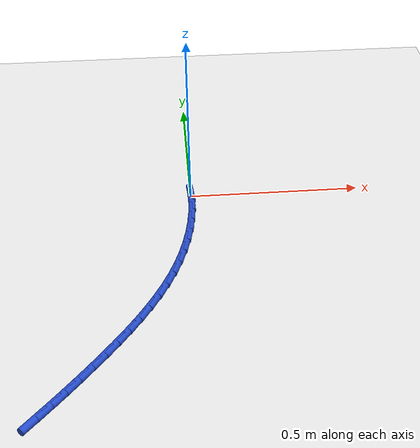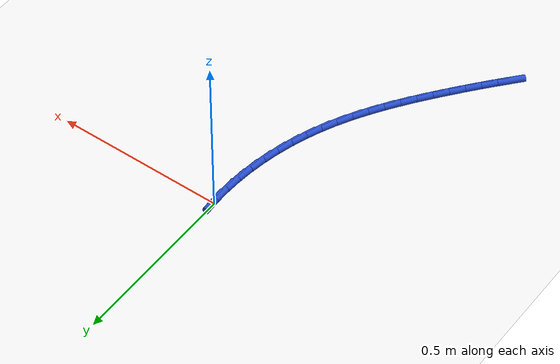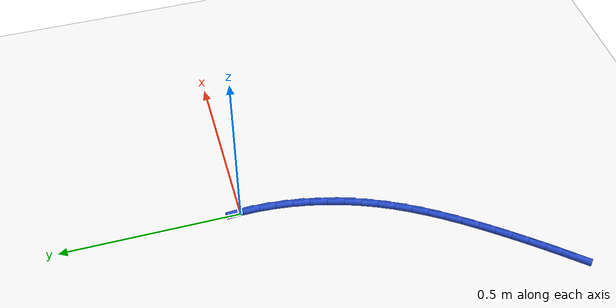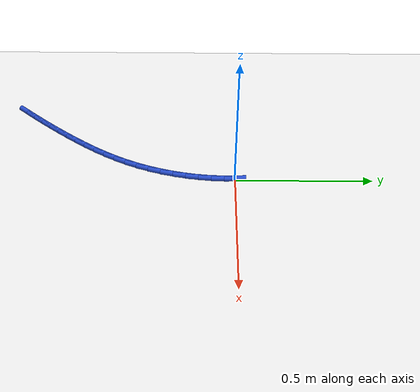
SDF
<sdf version="1.6">
 <world name="default">
  <model name="ground_plane">
   <static>1</static>
   <link name="link">
    <collision name="collision">
     <geometry><plane><normal>0 0 1</normal><size>100 100</size></plane></geometry>
     <surface><friction><ode><mu>100</mu><mu2>50</mu2></ode></friction></surface>
    </collision>
    <visual name="visual">
     <cast_shadows>0</cast_shadows>
     <geometry><plane><normal>0 0 1</normal><size>100 100</size></plane></geometry>
     <material>
      <script><uri>file://media/materials/scripts/gazebo.material</uri><name>Gazebo/WhiteGlow</name></script>
     </material>
    </visual>
   </link>
  </model>
  <model name="line">
   <link name="link_0">
    <pose>-1.0408340855860843e-17 -4.85722573273506e-17 0.01 0 1.57 -1.5043325202332238</pose>
    <collision name="collision">
     <geometry><cylinder><radius>0.01</radius><length>0.08</length></cylinder></geometry>
    </collision>
    <visual name="visual">
     <material>
      <script><name>Gazebo/Blue</name><uri>file://media/materials/scripts/gazebo.material</uri></script>
     </material>
     <geometry><cylinder><radius>0.01</radius><length>0.08</length></cylinder></geometry>
    </visual>
   </link>
   <link name="link_150">
    <pose>-0.38813725665309456 -0.8283272184643574 0.01 0 1.57 0.8598216901882203</pose>
    <collision name="collision">
     <geometry><cylinder><radius>0.01</radius><length>0.08</length></cylinder></geometry>
    </collision>
    <visual name="visual">
     <material>
      <script><name>Gazebo/Blue</name><uri>file://media/materials/scripts/gazebo.material</uri></script>
     </material>
     <geometry><cylinder><radius>0.01</radius><length>0.08</length></cylinder></geometry>
    </visual>
   </link>
   <link name="link_151">
    <pose>-0.35821216742491113 -0.7935800884324711 0.01 0 1.57 0.8736000230093379</pose>
    <collision name="collision">
     <geometry><cylinder><radius>0.01</radius><length>0.08</length></cylinder></geometry>
    </collision>
    <visual name="visual">
     <material>
      <script><name>Gazebo/Blue</name><uri>file://media/materials/scripts/gazebo.material</uri></script>
     </material>
     <geometry><cylinder><radius>0.01</radius><length>0.08</length></cylinder></geometry>
    </visual>
   </link>
   <link name="link_152">
    <pose>-0.3287006011719393 -0.7583426869344161 0.01 0 1.57 0.8871691010493127</pose>
    <collision name="collision">
     <geometry><cylinder><radius>0.01</radius><length>0.08</length></cylinder></geometry>
    </collision>
    <visual name="visual">
     <material>
      <script><name>Gazebo/Blue</name><uri>file://media/materials/scripts/gazebo.material</uri></script>
     </material>
     <geometry><cylinder><radius>0.01</radius><length>0.08</length></cylinder></geometry>
    </visual>
   </link>
   <link name="link_153">
    <pose>-0.29956985145293 -0.7225853187951232 0.01 0 1.57 0.9004876901715717</pose>
    <collision name="collision">
     <geometry><cylinder><radius>0.01</radius><length>0.08</length></cylinder></geometry>
    </collision>
    <visual name="visual">
     <material>
      <script><name>Gazebo/Blue</name><uri>file://media/materials/scripts/gazebo.material</uri></script>
     </material>
     <geometry><cylinder><radius>0.01</radius><length>0.08</length></cylinder></geometry>
    </visual>
   </link>
   <link name="link_154">
    <pose>-0.27078721182663634 -0.6862782888395257 0.01 0 1.57 0.9137795562795199</pose>
    <collision name="collision">
     <geometry><cylinder><radius>0.01</radius><length>0.08</length></cylinder></geometry>
    </collision>
    <visual name="visual">
     <material>
      <script><name>Gazebo/Blue</name><uri>file://media/materials/scripts/gazebo.material</uri></script>
     </material>
     <geometry><cylinder><radius>0.01</radius><length>0.08</length></cylinder></geometry>
    </visual>
   </link>
   <link name="link_155">
    <pose>-0.24233360359298772 -0.6493895454737892 0.01 0 1.57 0.93017601756158</pose>
    <collision name="collision">
     <geometry><cylinder><radius>0.01</radius><length>0.08</length></cylinder></geometry>
    </collision>
    <visual name="visual">
     <material>
      <script><name>Gazebo/Blue</name><uri>file://media/materials/scripts/gazebo.material</uri></script>
     </material>
     <geometry><cylinder><radius>0.01</radius><length>0.08</length></cylinder></geometry>
    </visual>
   </link>
   <link name="link_156">
    <pose>-0.2143540171039538 -0.6118586673700267 0.01 0 1.57 0.9517774705016749</pose>
    <collision name="collision">
     <geometry><cylinder><radius>0.01</radius><length>0.08</length></cylinder></geometry>
    </collision>
    <visual name="visual">
     <material>
      <script><name>Gazebo/Blue</name><uri>file://media/materials/scripts/gazebo.material</uri></script>
     </material>
     <geometry><cylinder><radius>0.01</radius><length>0.08</length></cylinder></geometry>
    </visual>
   </link>
   <link name="link_157">
    <pose>-0.18710203810986223 -0.573606455603158 0.01 0 1.57 0.9786664675622566</pose>
    <collision name="collision">
     <geometry><cylinder><radius>0.01</radius><length>0.08</length></cylinder></geometry>
    </collision>
    <visual name="visual">
     <material>
      <script><name>Gazebo/Blue</name><uri>file://media/materials/scripts/gazebo.material</uri></script>
     </material>
     <geometry><cylinder><radius>0.01</radius><length>0.08</length></cylinder></geometry>
    </visual>
   </link>
   <link name="link_158">
    <pose>-0.16083318967599441 -0.5345533762604284 0.01 0 1.57 1.0109056716242524</pose>
    <collision name="collision">
     <geometry><cylinder><radius>0.01</radius><length>0.08</length></cylinder></geometry>
    </collision>
    <visual name="visual">
     <material>
      <script><name>Gazebo/Blue</name><uri>file://media/materials/scripts/gazebo.material</uri></script>
     </material>
     <geometry><cylinder><radius>0.01</radius><length>0.08</length></cylinder></geometry>
    </visual>
   </link>
   <link name="link_159">
    <pose>-0.1358029948676335 -0.49461989542908613 0.01 0 1.57 1.0485522515570203</pose>
    <collision name="collision">
     <geometry><cylinder><radius>0.01</radius><length>0.08</length></cylinder></geometry>
    </collision>
    <visual name="visual">
     <material>
      <script><name>Gazebo/Blue</name><uri>file://media/materials/scripts/gazebo.material</uri></script>
     </material>
     <geometry><cylinder><radius>0.01</radius><length>0.08</length></cylinder></geometry>
    </visual>
   </link>
   <link name="link_160">
    <pose>-0.11226697675006109 -0.4537264791963767 0.01 0 1.57 1.0916296727579122</pose>
    <collision name="collision">
     <geometry><cylinder><radius>0.01</radius><length>0.08</length></cylinder></geometry>
    </collision>
    <visual name="visual">
     <material>
      <script><name>Gazebo/Blue</name><uri>file://media/materials/scripts/gazebo.material</uri></script>
     </material>
     <geometry><cylinder><radius>0.01</radius><length>0.08</length></cylinder></geometry>
    </visual>
   </link>
   <link name="link_161">
    <pose>-0.09048065838855916 -0.4117935936495467 0.01 0 1.57 1.1400942643785357</pose>
    <collision name="collision">
     <geometry><cylinder><radius>0.01</radius><length>0.08</length></cylinder></geometry>
    </collision>
    <visual name="visual">
     <material>
      <script><name>Gazebo/Blue</name><uri>file://media/materials/scripts/gazebo.material</uri></script>
     </material>
     <geometry><cylinder><radius>0.01</radius><length>0.08</length></cylinder></geometry>
    </visual>
   </link>
   <link name="link_162">
    <pose>-0.07069956284840982 -0.3687417048758423 0.01 0 1.57 1.1932095624885528</pose>
    <collision name="collision">
     <geometry><cylinder><radius>0.01</radius><length>0.08</length></cylinder></geometry>
    </collision>
    <visual name="visual">
     <material>
      <script><name>Gazebo/Blue</name><uri>file://media/materials/scripts/gazebo.material</uri></script>
     </material>
     <geometry><cylinder><radius>0.01</radius><length>0.08</length></cylinder></geometry>
    </visual>
   </link>
   <link name="link_163">
    <pose>-0.053161073573626726 -0.3245215104133108 0.01 0 1.57 1.2469976909266696</pose>
    <collision name="collision">
     <geometry><cylinder><radius>0.01</radius><length>0.08</length></cylinder></geometry>
    </collision>
    <visual name="visual">
     <material>
      <script><name>Gazebo/Blue</name><uri>file://media/materials/scripts/gazebo.material</uri></script>
     </material>
     <geometry><cylinder><radius>0.01</radius><length>0.08</length></cylinder></geometry>
    </visual>
   </link>
   <link name="link_164">
    <pose>-0.03798014574969717 -0.2792877464521714 0.01 0 1.57 1.300273682936629</pose>
    <collision name="collision">
     <geometry><cylinder><radius>0.01</radius><length>0.08</length></cylinder></geometry>
    </collision>
    <visual name="visual">
     <material>
      <script><name>Gazebo/Blue</name><uri>file://media/materials/scripts/gazebo.material</uri></script>
     </material>
     <geometry><cylinder><radius>0.01</radius><length>0.08</length></cylinder></geometry>
    </visual>
   </link>
   <link name="link_165">
    <pose>-0.0252211054095518 -0.23327952761105436 0.01 0 1.57 1.3535603406135415</pose>
    <collision name="collision">
     <geometry><cylinder><radius>0.01</radius><length>0.08</length></cylinder></geometry>
    </collision>
    <visual name="visual">
     <material>
      <script><name>Gazebo/Blue</name><uri>file://media/materials/scripts/gazebo.material</uri></script>
     </material>
     <geometry><cylinder><radius>0.01</radius><length>0.08</length></cylinder></geometry>
    </visual>
   </link>
   <link name="link_166">
    <pose>-0.014948117811316657 -0.18673623645550796 0.01 0 1.57 1.4073873939009798</pose>
    <collision name="collision">
     <geometry><cylinder><radius>0.01</radius><length>0.08</length></cylinder></geometry>
    </collision>
    <visual name="visual">
     <material>
      <script><name>Gazebo/Blue</name><uri>file://media/materials/scripts/gazebo.material</uri></script>
     </material>
     <geometry><cylinder><radius>0.01</radius><length>0.08</length></cylinder></geometry>
    </visual>
   </link>
   <link name="link_167">
    <pose>-0.007225348213117834 -0.13989725555108087 0.01 0 1.57 1.4622923894749646</pose>
    <collision name="collision">
     <geometry><cylinder><radius>0.01</radius><length>0.08</length></cylinder></geometry>
    </collision>
    <visual name="visual">
     <material>
      <script><name>Gazebo/Blue</name><uri>file://media/materials/scripts/gazebo.material</uri></script>
     </material>
     <geometry><cylinder><radius>0.01</radius><length>0.08</length></cylinder></geometry>
    </visual>
   </link>
   <link name="link_168">
    <pose>-0.002116961873081337 -0.09300196746332078 0.01 0 1.57 1.5188259813000275</pose>
    <collision name="collision">
     <geometry><cylinder><radius>0.01</radius><length>0.08</length></cylinder></geometry>
    </collision>
    <visual name="visual">
     <material>
      <script><name>Gazebo/Blue</name><uri>file://media/materials/scripts/gazebo.material</uri></script>
     </material>
     <geometry><cylinder><radius>0.01</radius><length>0.08</length></cylinder></geometry>
    </visual>
   </link>
   <link name="link_169">
    <pose>0.0003128759506665947 -0.04628975475777785 0.01 0 1.57 -1.5640373541486943</pose>
    <collision name="collision">
     <geometry><cylinder><radius>0.01</radius><length>0.08</length></cylinder></geometry>
    </collision>
    <visual name="visual">
     <material>
      <script><name>Gazebo/Blue</name><uri>file://media/materials/scripts/gazebo.material</uri></script>
     </material>
     <geometry><cylinder><radius>0.01</radius><length>0.08</length></cylinder></geometry>
    </visual>
   </link>
  </model>
 </world>
</sdf>
